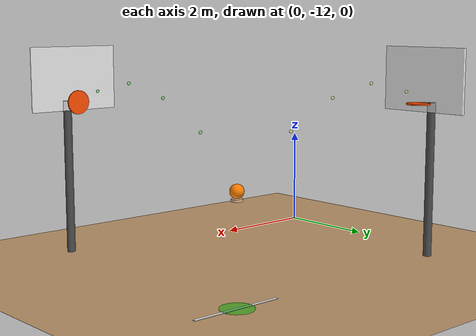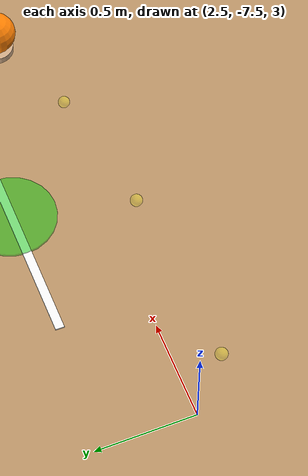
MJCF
<?xml version="1.0" encoding="utf-8"?>
<mujoco model="basketball_visualization">

    <option gravity="0 0 -9.81" timestep="0.002"/>

    <visual>
        <global offwidth="1920" offheight="1080"/>
        <quality shadowsize="4096"/>
        <headlight ambient="0.4 0.4 0.4" diffuse="0.8 0.8 0.8"/>
    </visual>

    <asset>
        <!-- Court and environment -->
        <material name="court" rgba="0.76 0.60 0.42 1" specular="0.1"/>
        <material name="line" rgba="1 1 1 1"/>
        <material name="backboard" rgba="1 1 1 0.8" specular="0.5"/>
        <material name="rim" rgba="1 0.3 0 1" specular="0.8"/>
        <material name="ball" rgba="1 0.5 0 1" specular="0.3"/>
        <material name="hand" rgba="0.85 0.7 0.55 1"/>
        <material name="target" rgba="0 1 0 0.5"/>

        <!-- Textures -->
        <texture name="skybox" type="skybox" builtin="gradient" rgb1="0.3 0.5 0.7" rgb2="0 0 0" width="512" height="512"/>
    </asset>

    <worldbody>
        <!-- Lights -->
        <light pos="0 0 10" dir="0 0 -1" diffuse="1 1 1" specular="0.3 0.3 0.3"/>
        <light pos="5 -10 8" dir="-0.3 0.6 -0.5" diffuse="0.5 0.5 0.5"/>

        <!-- Court floor -->
        <geom name="court" type="plane" size="15 15 0.1" material="court"/>

        <!-- ==================== PLAYER POSITION ==================== -->
        <!-- Free throw line marker (player shoots from here) -->
        <!-- Player position from skeleton data: x ~ 5.7m, y ~ -7.6m -->
        <geom name="freethrow_line" type="box" pos="5.7 -7.6 0.005" size="0.9 0.03 0.005" material="line"/>

        <!-- Player position marker (green) -->
        <geom name="player_marker" type="cylinder" pos="5.7 -7.6 0.01" size="0.3 0.01" rgba="0 0.8 0 0.5"/>

        <!-- ==================== HOOP POSITION ==================== -->
        <!-- Standard: 15 feet (4.57m) from free throw line, 10 feet (3.05m) high -->
        <!-- If player is at (5.7, -7.6), hoop could be in multiple directions -->

        <!-- OPTION A: Hoop in -Y direction (toward y = -12.17) -->
        <body name="hoop_y" pos="5.7 -12.17 3.05">
            <!-- Rim (18 inch = 0.457m diameter) -->
            <geom name="rim_y" type="cylinder" size="0.229 0.015" material="rim" euler="90 0 0"/>
            <!-- Backboard -->
            <geom name="backboard_y" type="box" pos="0 -0.15 0.45" size="0.91 0.02 0.61" material="backboard"/>
            <!-- Pole -->
            <geom name="pole_y" type="cylinder" pos="0 -0.4 -1.5" size="0.08 1.5" rgba="0.3 0.3 0.3 1"/>
        </body>

        <!-- OPTION B: Hoop in -X direction (toward x = 1.13) -->
        <body name="hoop_x" pos="1.13 -7.6 3.05">
            <!-- Rim -->
            <geom name="rim_x" type="cylinder" size="0.229 0.015" material="rim"/>
            <!-- Backboard -->
            <geom name="backboard_x" type="box" pos="-0.15 0 0.45" size="0.02 0.91 0.61" material="backboard"/>
            <!-- Pole -->
            <geom name="pole_x" type="cylinder" pos="-0.4 0 -1.5" size="0.08 1.5" rgba="0.3 0.3 0.3 1"/>
        </body>

        <!-- ==================== SHOOTING HAND ==================== -->
        <!-- Hand starts at typical release height (~2m) -->
        <body name="hand" pos="5.7 -7.6 1.8">
            <joint name="hand_x" type="slide" axis="1 0 0" range="-5 5"/>
            <joint name="hand_y" type="slide" axis="0 1 0" range="-5 5"/>
            <joint name="hand_z" type="slide" axis="0 0 1" range="-1 2"/>

            <!-- Palm (cylinder, slightly cupped) -->
            <geom name="palm" type="cylinder" size="0.10 0.02" material="hand" mass="2.0"/>
        </body>

        <!-- ==================== BASKETBALL ==================== -->
        <!-- Ball: diameter 9.43 inches = 0.24m, radius = 0.12m -->
        <!-- Mass: 22 oz = 0.625 kg -->
        <body name="ball" pos="5.7 -7.6 1.94">
            <freejoint name="ball_free"/>
            <geom name="basketball" type="sphere" size="0.12" material="ball" mass="0.625"/>
        </body>

        <!-- ==================== TRAJECTORY MARKERS ==================== -->
        <!-- These show where a properly thrown ball should go -->

        <!-- Arc points for ideal trajectory to hoop_y -->
        <geom name="arc1_y" type="sphere" pos="5.7 -8.5 2.8" size="0.03" rgba="0 1 0 0.3"/>
        <geom name="arc2_y" type="sphere" pos="5.7 -9.5 3.3" size="0.03" rgba="0 1 0 0.3"/>
        <geom name="arc3_y" type="sphere" pos="5.7 -10.5 3.5" size="0.03" rgba="0 1 0 0.3"/>
        <geom name="arc4_y" type="sphere" pos="5.7 -11.5 3.3" size="0.03" rgba="0 1 0 0.3"/>

        <!-- Arc points for ideal trajectory to hoop_x -->
        <geom name="arc1_x" type="sphere" pos="4.5 -7.6 2.8" size="0.03" rgba="1 1 0 0.3"/>
        <geom name="arc2_x" type="sphere" pos="3.5 -7.6 3.3" size="0.03" rgba="1 1 0 0.3"/>
        <geom name="arc3_x" type="sphere" pos="2.5 -7.6 3.5" size="0.03" rgba="1 1 0 0.3"/>
        <geom name="arc4_x" type="sphere" pos="1.5 -7.6 3.3" size="0.03" rgba="1 1 0 0.3"/>

        <!-- ==================== CAMERAS ==================== -->
        <camera name="side_y" pos="10 -10 4" xyaxes="0 -1 0 0.3 0 1"/>
        <camera name="side_x" pos="3.5 -12 4" xyaxes="1 0 0 0 0.3 1"/>
        <camera name="top" pos="5.7 -10 12" xyaxes="1 0 0 0 1 0"/>
        <camera name="behind_player" pos="5.7 -5 3" xyaxes="1 0 0 0 0.5 1"/>

    </worldbody>

    <!-- Hand actuators to push ball -->
    <actuator>
        <motor name="push_x" joint="hand_x" gear="500"/>
        <motor name="push_y" joint="hand_y" gear="500"/>
        <motor name="push_z" joint="hand_z" gear="500"/>
    </actuator>

    <!-- Key poses -->
    <keyframe>
        <!-- Starting position: ball on hand -->
        <key name="start"
             qpos="0 0 0   5.7 -7.6 1.94   1 0 0 0"
             qvel="0 0 0   0 0 0   0 0 0"/>

        <!-- Simulate a shot toward -Y hoop with proper velocity -->
        <!-- Need: ~4.5m horizontal, ~1.1m up, flight time ~0.7s -->
        <!-- vy = -4.5/0.7 = -6.4 m/s, vz = (1.1 + 0.5*9.81*0.49)/0.7 = 5 m/s -->
        <key name="shot_y"
             qpos="0 0 0.2   5.7 -7.6 2.14   1 0 0 0"
             qvel="0 0 3   0 -6.5 5   0 0 0"/>

        <!-- Simulate a shot toward -X hoop -->
        <key name="shot_x"
             qpos="0 0 0.2   5.7 -7.6 2.14   1 0 0 0"
             qvel="0 0 3   -6.5 0 5   0 0 0"/>

        <!-- What we actually see from the data: mostly upward, very little horizontal -->
        <key name="data_shot"
             qpos="0 0 0.2   5.7 -7.6 2.14   1 0 0 0"
             qvel="0 0 3   -0.5 -0.7 4   0 0 0"/>
    </keyframe>

</mujoco>
